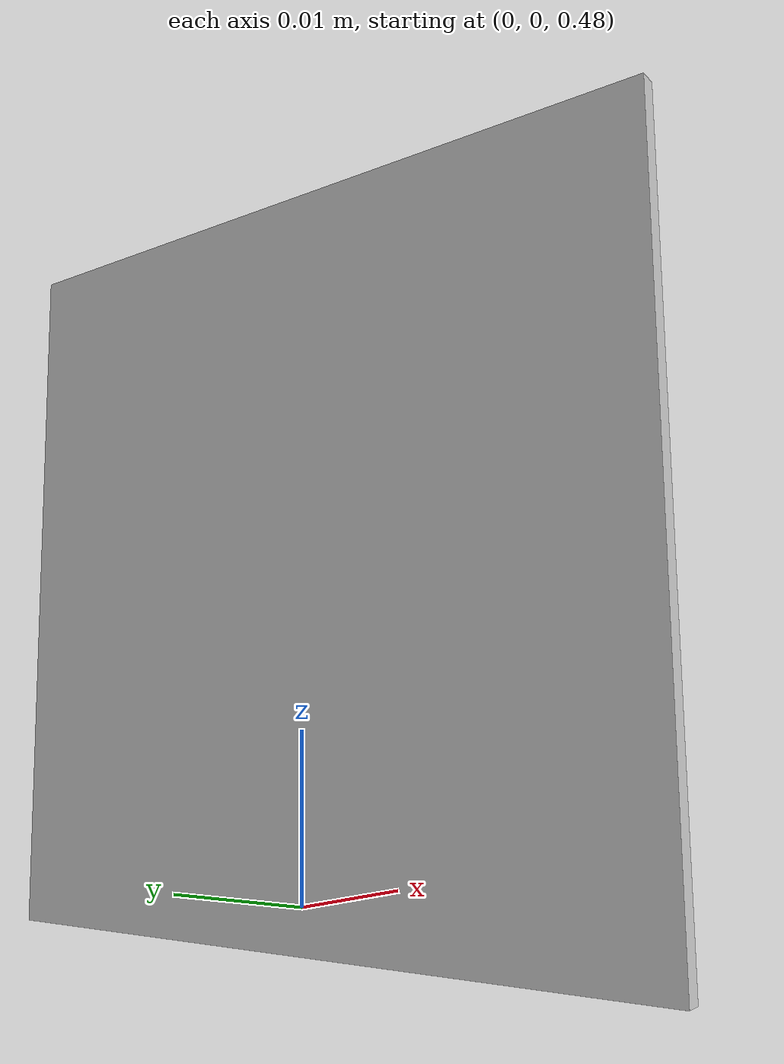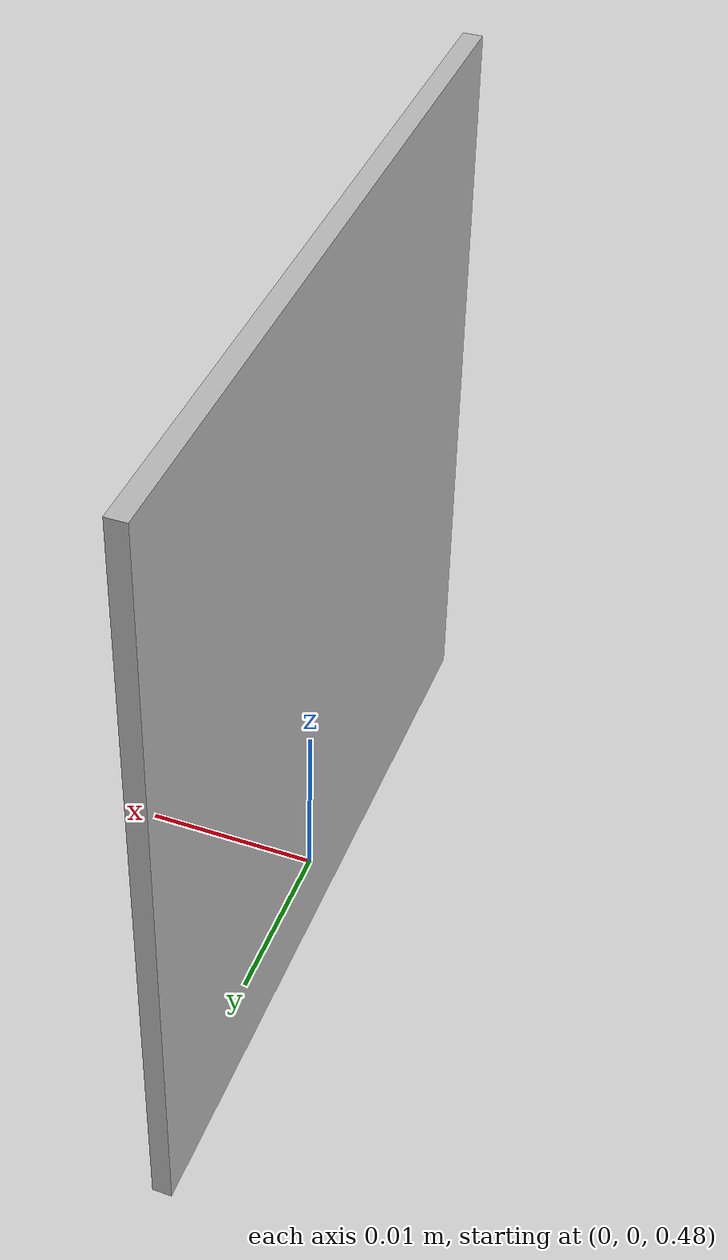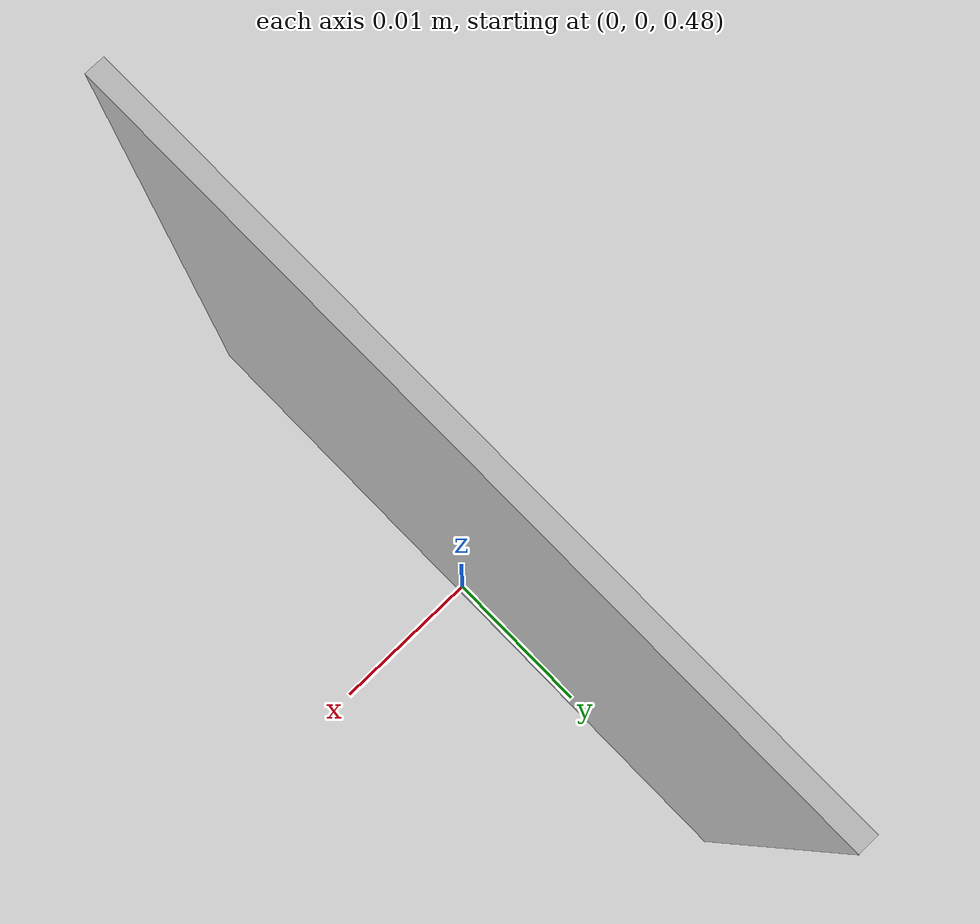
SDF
<?xml version="1.0" ?>
<sdf version="1.4">
  <model name="Marker">
    <pose>0 0 0.5 -1.57 0 0</pose>
    <static>true</static>
    <link name="link">
      <inertial>
        <mass>0.1</mass>
      </inertial>
      <collision name="collision">
        <geometry>
          <box>
            <size>10 10 10</size>
          </box>
        </geometry>
      </collision>

      <visual name="visual">
        <geometry>
          <mesh>
            <uri>model://marker/meshes/mbzirc.dae</uri>
          </mesh>
        </geometry>
      </visual>
    </link>
  </model>
</sdf>
